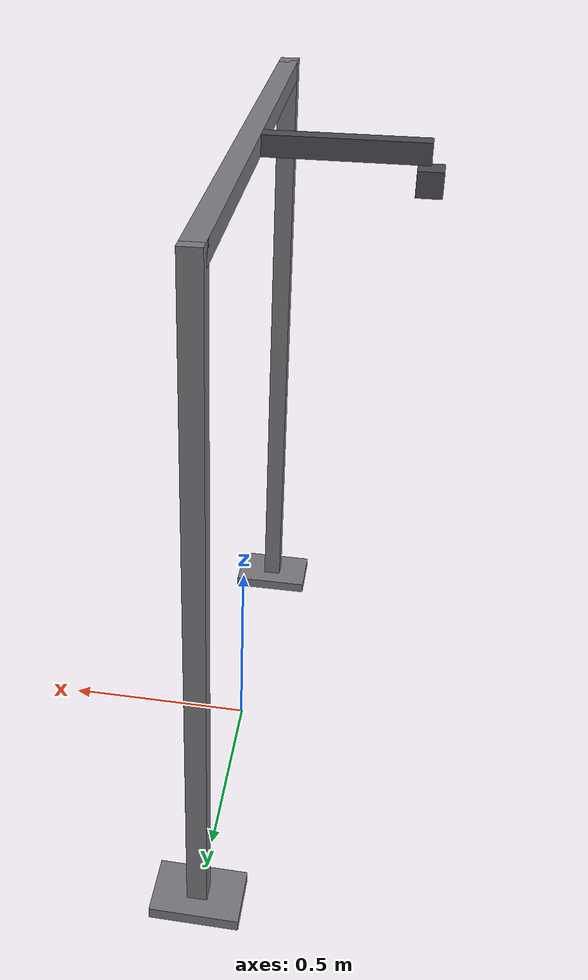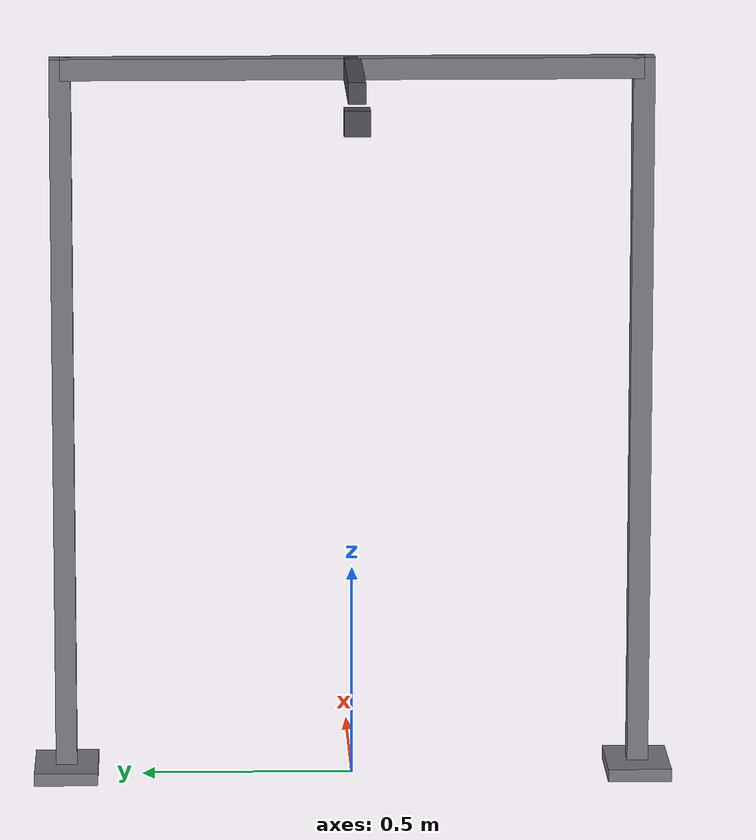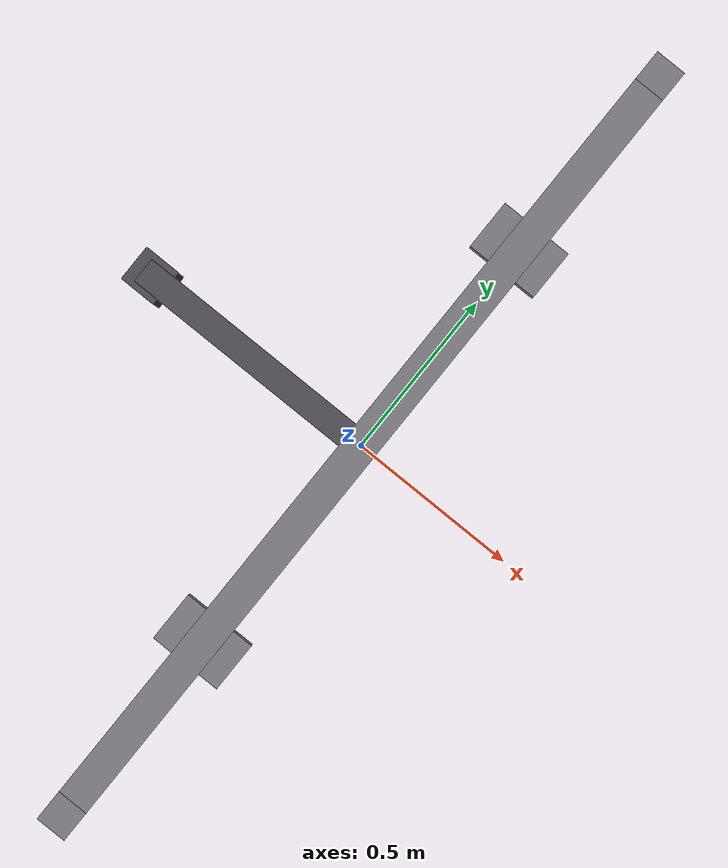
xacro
<?xml version="1.0"?>
<robot name="u_cell_frame" xmlns:xacro="http://ros.org/wiki/xacro">

  <xacro:arg name="rear_x" default="1.00"/>
  <xacro:arg name="post_y" default="0.68"/>
  <xacro:arg name="frame_height" default="1.72"/>
  <xacro:arg name="cantilever_length" default="0.40"/>  <!-- forward from rear beam -->
  <xacro:arg name="beam_size" default="0.05"/>

  <xacro:property name="rx" value="$(arg rear_x)"/>
  <xacro:property name="py" value="$(arg post_y)"/>
  <xacro:property name="fh" value="$(arg frame_height)"/>
  <xacro:property name="cl" value="$(arg cantilever_length)"/>
  <xacro:property name="b" value="$(arg beam_size)"/>

  <!-- Materials -->
  <material name="ucell_frame_gray">
    <color rgba="0.48 0.48 0.50 1"/>
  </material>
  <material name="ucell_cantilever_dark">
    <color rgba="0.30 0.30 0.33 1"/>
  </material>

  <!-- Root link at rear beam center, ground level -->
  <link name="u_cell_base">
    <inertial>
      <mass value="120.0"/>
      <inertia ixx="60.0" ixy="0" ixz="0" iyy="60.0" iyz="0" izz="60.0"/>
      <origin xyz="0 0 ${fh/2}" rpy="0 0 0"/>
    </inertial>

    <!-- ===== Rear-Left Post ===== -->
    <visual name="post_rl">
      <origin xyz="0 ${-py} ${fh/2}" rpy="0 0 0"/>
      <geometry><box size="${b} ${b} ${fh}"/></geometry>
      <material name="ucell_frame_gray"/>
    </visual>
    <collision name="post_rl_col">
      <origin xyz="0 ${-py} ${fh/2}" rpy="0 0 0"/>
      <geometry><box size="${b} ${b} ${fh}"/></geometry>
    </collision>

    <!-- ===== Rear-Right Post ===== -->
    <visual name="post_rr">
      <origin xyz="0 ${py} ${fh/2}" rpy="0 0 0"/>
      <geometry><box size="${b} ${b} ${fh}"/></geometry>
      <material name="ucell_frame_gray"/>
    </visual>
    <collision name="post_rr_col">
      <origin xyz="0 ${py} ${fh/2}" rpy="0 0 0"/>
      <geometry><box size="${b} ${b} ${fh}"/></geometry>
    </collision>

    <!-- ===== Rear Cross-Beam (along Y, at top) ===== -->
    <visual name="beam_rear">
      <origin xyz="0 0 ${fh - b/2}" rpy="0 0 0"/>
      <geometry><box size="${b} ${py*2} ${b}"/></geometry>
      <material name="ucell_frame_gray"/>
    </visual>
    <collision name="beam_rear_col">
      <origin xyz="0 0 ${fh - b/2}" rpy="0 0 0"/>
      <geometry><box size="${b} ${py*2} ${b}"/></geometry>
    </collision>

    <!-- ===== Central Cantilever (along -X, extending forward from rear beam) ===== -->
    <visual name="cantilever">
      <origin xyz="${-cl/2} 0 ${fh - b/2}" rpy="0 0 0"/>
      <geometry><box size="${cl} ${b*0.8} ${b}"/></geometry>
      <material name="ucell_cantilever_dark"/>
    </visual>
    <collision name="cantilever_col">
      <origin xyz="${-cl/2} 0 ${fh - b/2}" rpy="0 0 0"/>
      <geometry><box size="${cl} ${b*0.8} ${b}"/></geometry>
    </collision>

    <!-- ===== Hanger Mount (small bracket at cantilever tip) ===== -->
    <visual name="hanger_mount">
      <origin xyz="${-cl} 0 ${fh - b*1.8}" rpy="0 0 0"/>
      <geometry><box size="${b*1.2} ${b*1.2} ${b*1.2}"/></geometry>
      <material name="ucell_cantilever_dark"/>
    </visual>

    <!-- ===== Base Plates (feet) ===== -->
    <visual name="foot_rl">
      <origin xyz="0 ${-py} 0.015" rpy="0 0 0"/>
      <geometry><box size="0.22 0.15 0.03"/></geometry>
      <material name="ucell_frame_gray"/>
    </visual>
    <visual name="foot_rr">
      <origin xyz="0 ${py} 0.015" rpy="0 0 0"/>
      <geometry><box size="0.22 0.15 0.03"/></geometry>
      <material name="ucell_frame_gray"/>
    </visual>
  </link>

  <gazebo><static>true</static></gazebo>
</robot>
